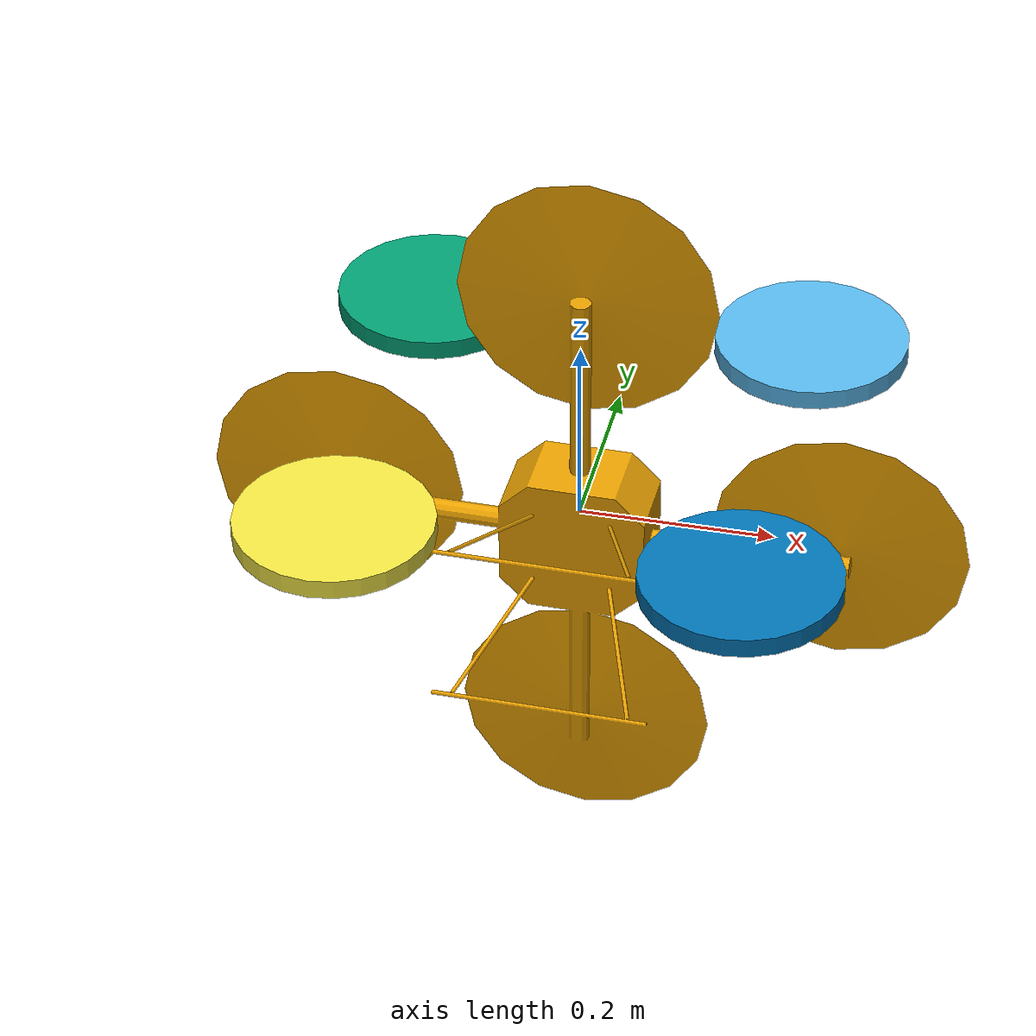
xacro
<?xml version="1.0"?>
<robot xmlns:xacro="http://wiki.ros.org/xacro" name="quadrotor">

  <xacro:macro name="quadrotor_base_macro">

    <!-- Base Link -->
    <link name="base_link">
      <inertial>
        <origin xyz="0 0 0" rpy="0 0 0"/>
        <mass value="1.477"/>
        <inertia ixx="0.01152" ixy="0.0" ixz="0.0" iyy="0.01152" iyz="0.0" izz="0.0218"/>
      </inertial>
      <visual>
        <geometry>
          <mesh filename="file:///github/falco_ws/src/drone/meshes/quadrotor/quadrotor_base.dae"/>
        </geometry>
      </visual>
      <collision>
        <geometry>
          <mesh filename="file:///github/falco_ws/src/drone/meshes/quadrotor/quadrotor_base.stl"/>
        </geometry>
      </collision>
    </link>

    <!-- ROS 2 Control Configuration -->
    <ros2_control name="GazeboSimSystem" type="system">
      <hardware>
        <plugin>gazebo_ros2_control/GazeboSimSystem</plugin>
      </hardware>
      <joint name="rotor_1_joint">
        <command_interface name="velocity"/>
        <state_interface name="position"/>
        <state_interface name="velocity"/>
      </joint>
      <joint name="rotor_2_joint">
        <command_interface name="velocity"/>
        <state_interface name="position"/>
        <state_interface name="velocity"/>
      </joint>
      <joint name="rotor_3_joint">
        <command_interface name="velocity"/>
        <state_interface name="position"/>
        <state_interface name="velocity"/>
      </joint>
      <joint name="rotor_4_joint">
        <command_interface name="velocity"/>
        <state_interface name="position"/>
        <state_interface name="velocity"/>
      </joint>
    </ros2_control>

    <!-- Rotor Macro -->
    <xacro:macro name="rotor" params="prefix x y">
      <joint name="${prefix}_joint" type="continuous">
        <parent link="base_link"/>
        <child link="${prefix}_link"/>
        <origin xyz="${x} ${y} 0.1" rpy="0 0 0"/>
        <axis xyz="0 0 1"/>
      </joint>
      <link name="${prefix}_link">
        <inertial>
          <mass value="0.1"/>
          <inertia ixx="0.0001" ixy="0" ixz="0" iyy="0.0001" iyz="0" izz="0.0002"/>
        </inertial>
        <visual>
          <geometry>
            <cylinder length="0.02" radius="0.1"/>
          </geometry>
        </visual>
      </link>
    </xacro:macro>

    <!-- Create 4 rotors -->
    <xacro:rotor prefix="rotor_1" x="0.2" y="0.2"/>
    <xacro:rotor prefix="rotor_2" x="-0.2" y="0.2"/>
    <xacro:rotor prefix="rotor_3" x="-0.2" y="-0.2"/>
    <xacro:rotor prefix="rotor_4" x="0.2" y="-0.2"/>

    <!-- ROS 2 Gazebo Plugin -->
    <gazebo>
      <plugin name="gazebo_ros2_control" filename="libgazebo_ros2_control.so">
        <robotNamespace>/</robotNamespace>
        <robot_param>robot_description</robot_param>
      </plugin>
    </gazebo>

  </xacro:macro>

  <!-- Instantiate macro -->
  <xacro:quadrotor_base_macro/>

</robot>
